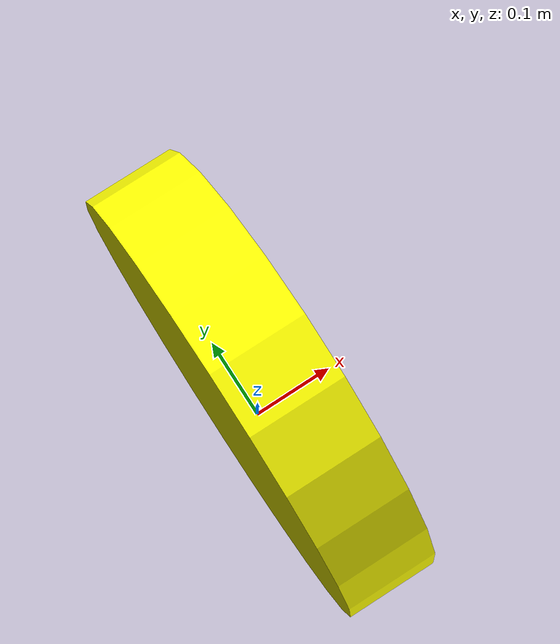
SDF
<?xml version='1.0'?>
<sdf version='1.4'>
  <model name="coin">
	<static>true</static>
	<link name='chassis'>
	<pose>0 0 .25 0 0 0</pose>

	<visual name='visual'>
      <pose>0 0 0 0 1.57 0</pose>
	  <geometry>
		<cylinder>
		  <radius>.25</radius>
		  <length>.1</length>
		</cylinder>
	  </geometry>
      <material>
        <ambient>1 1 0 1</ambient>
        <diffuse>1 1 0 1</diffuse>
        <specular>0.1 0.1 0.1 1</specular>
        <emissive>0 0 0 0</emissive>
      </material>
	</visual>
	</link>
	</model>
</sdf>
